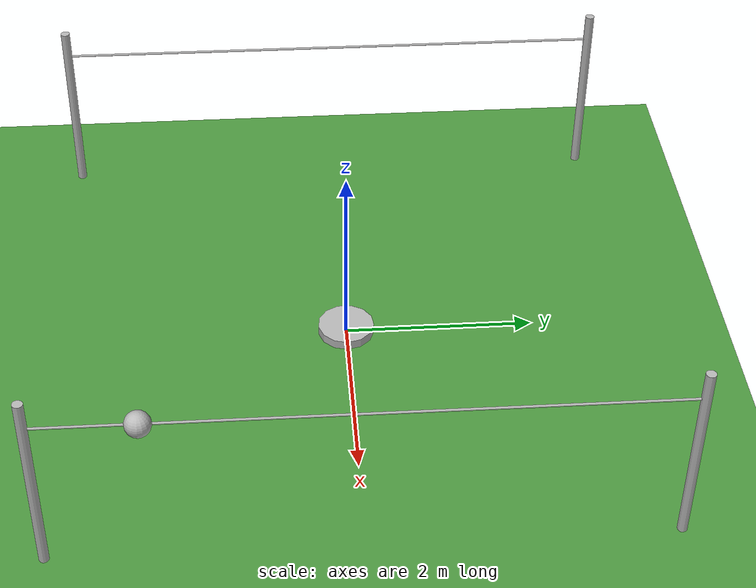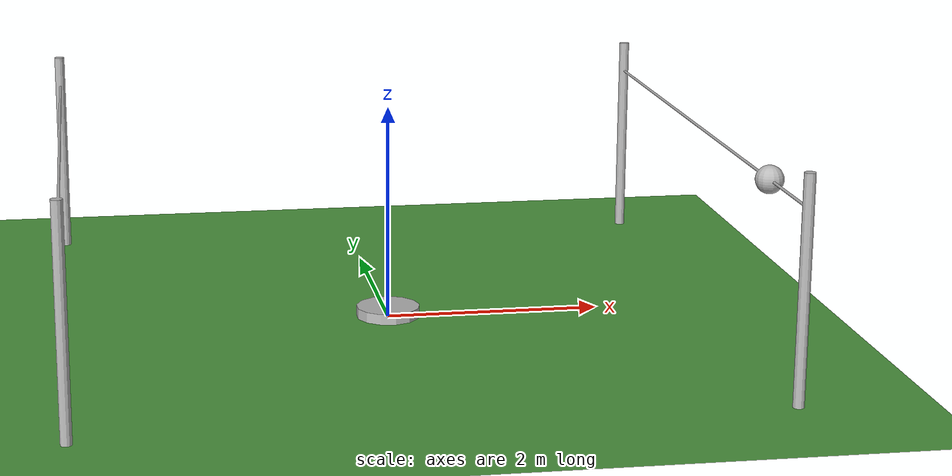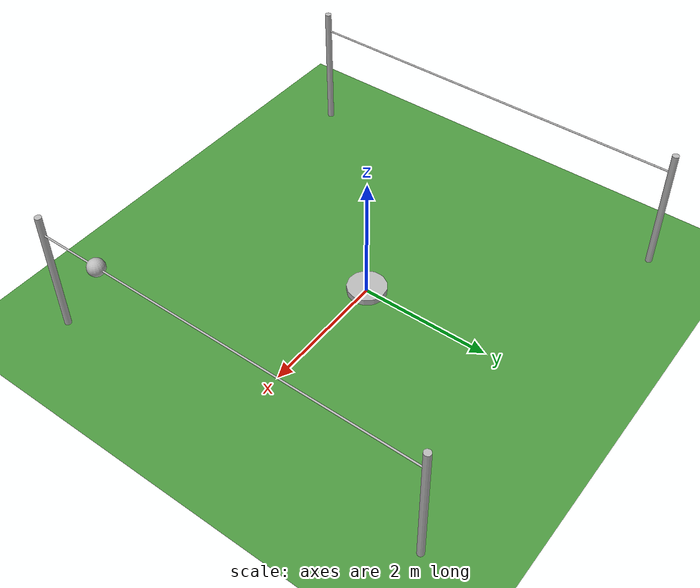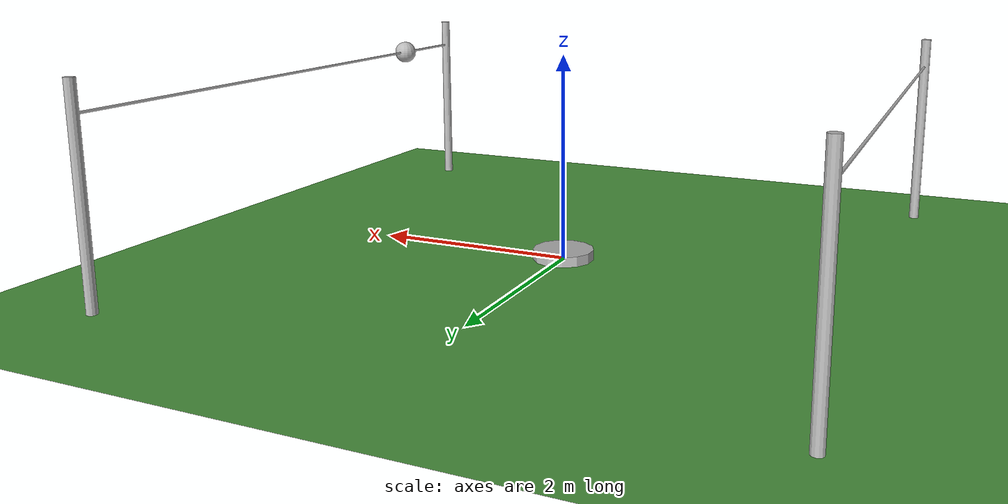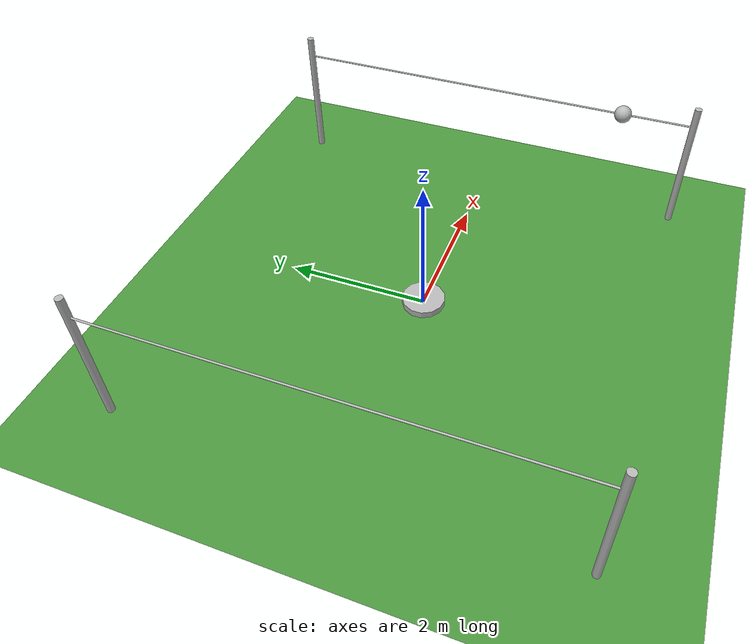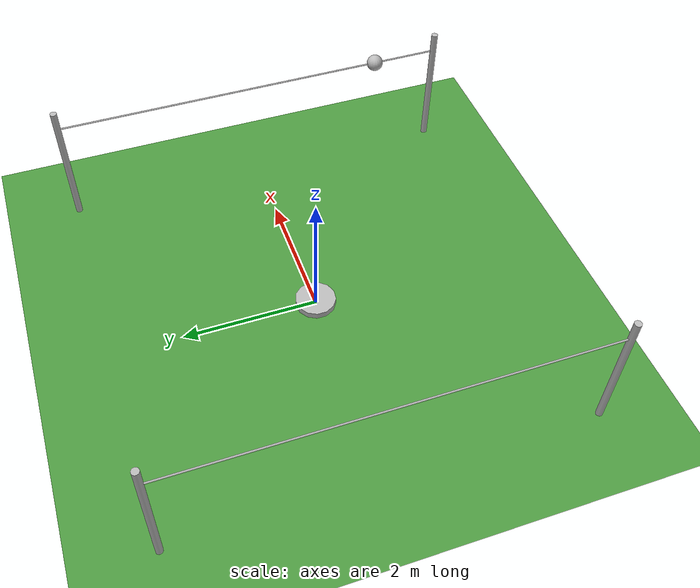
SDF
<?xml version="1.0" ?>
<sdf version="1.8">

  <world name="fase_2_world">

    <scene>
    <sky>
      <time>12</time>
      <sunrise>6</sunrise>
      <sunset>18</sunset>
    </sky>
    <ambient>0.4 0.4 0.4 1</ambient>
    <background>0.7 0.7 0.7 1</background>
    </scene>

    <light type="directional" name="sun">
      <cast_shadows>true</cast_shadows>
      <pose>0 0 10 0 0 0</pose>
      <diffuse>0.8 0.8 0.8 1</diffuse>
      <specular>0.2 0.2 0.2 1</specular>
      <attenuation>
        <range>1000</range>
        <constant>0.9</constant>
        <linear>0.01</linear>
        <quadratic>0.001</quadratic>
      </attenuation>
      <direction>-0.5 0.1 -0.9</direction>
    </light>

    <include>
        <uri>model://poles_wires</uri>
        <pose>0 0 0 0 0 0</pose>
    </include>

    <include>
        <uri>model://grass_plane</uri>
        <pose>0 0 0 0 0 0</pose>
    </include>

  </world>

</sdf>

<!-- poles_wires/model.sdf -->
<sdf version="1.8">

<model name="poles_wires">
      <static>true</static>

      <link name="poles_wires_link">
        <pose>0 0 0 0 0 0</pose>

        <visual name="poles_wires_visual">
          <geometry>
            <mesh>
              <uri>model://fase_2/meshes/fase_2.obj</uri>
            </mesh>
          </geometry>
        </visual>

        <collision name="poles_wires_collision">
          <geometry>
            <mesh>
              <uri>model://fase_2/meshes/fase_2.obj</uri>
            </mesh>
          </geometry>
        </collision>
      </link>
    </model>

</sdf>

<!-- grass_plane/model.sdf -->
<sdf version="1.5">
  <model name="grass_plane">
    <static>true</static>
    <link name="link">
      <pose>0 0 0 0 0 0</pose>
      <collision name="collision">
        <pose>0 0 0.15 0 0 0</pose>
        <geometry>
          <plane>
            <normal>0 0 1</normal>
            <size>25 25</size>
          </plane>
        </geometry>
        <surface>
          <friction>
            <ode>
              <mu>1</mu>
              <mu2>1</mu2>
            </ode>
          </friction>
        </surface>
      </collision>
      <visual name="visual">
        <geometry>
          <mesh>
            <uri>file://grass_plane/meshes/grass_plane.dae</uri>
            <scale>1 1 1</scale>
          </mesh>
        </geometry>
        <material>
          <script>
            <uri>file://media/materials/scripts/Gazebo.material</uri>
            <name>Gazebo/Grass</name>
          </script>
        </material>
      </visual>
    </link>
  </model>
</sdf>
